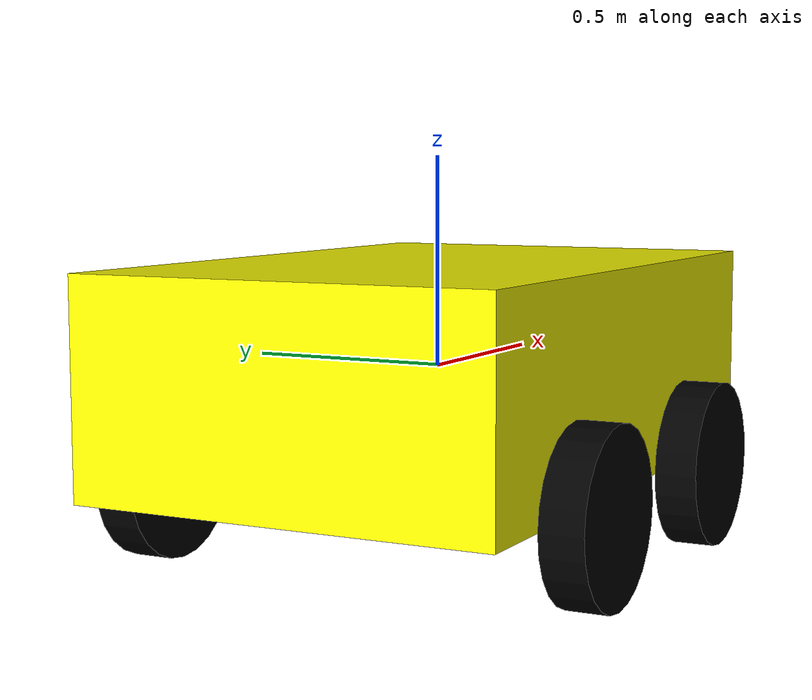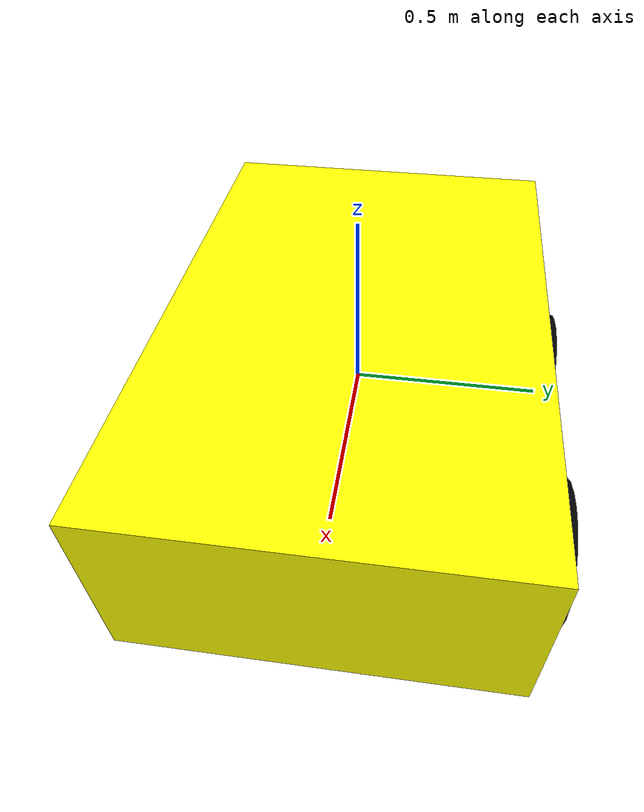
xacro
<?xml version="1.0"?>
<robot xmlns:xacro="http://www.ros.org/wiki/xacro" name="car">
    <xacro:property name="base_link_length" value="1.5"/>
    <xacro:property name="base_link_width" value="1"/>
    <xacro:property name="base_link_high" value="0.5"/>
    <xacro:property name="base_link_m" value="0.5"/>
    <xacro:property name="pi" value="3.1415926"/>

    <xacro:macro name="Box_inertial_matrix" params="m l w h">
        <inertial>
            <mass value="${m}"/>
            <inertia ixx="${m*(h*h + l*l)/12}" ixy="0" ixz="0"
                     iyy="${m*(w*w + l*l)/12}" iyz="0"
                     izz="${m*(w*w + h*h)/12}"/>
        </inertial>
    </xacro:macro>
    <xacro:macro name="cylinder_inertial_matrix" params="m r h">
        <inertial>
            <mass value="${m}"/>
            <inertia ixx="${m*(3*r*r+h*h)/12}" ixy="0" ixz="0"
                     iyy="${m*(3*r*r+h*h)/12}" iyz="0"
                     izz="${m*r*r/2}"/>
        </inertial>
    </xacro:macro>
    <!-- 底盘-->
    <link name="base_link">
        <visual>
            <geometry>
                <box size="${base_link_length} ${base_link_width} ${base_link_high}"/>
            </geometry>
            <origin xyz="0 0 0" rpy="0 0 0"/>
            <material name="orange">
                <color rgba="1.0 1.0 0 1.0"/>
            </material>
        </visual>
        <collision>
            <geometry>
                <box size="${base_link_length} ${base_link_width} ${base_link_high}"/>
            </geometry>
            <origin xyz="0 0 0" rpy="0 0 0"/>
        </collision>
        <xacro:Box_inertial_matrix m="${base_link_m}" l="${base_link_length}" w="${base_link_width}"
                                   h="${base_link_high}"/>
    </link>
    <gazebo reference="base_link">
        <material>Gazebo/Orange</material>
    </gazebo>
    <!-- 四个轮子   -->
    <xacro:property name="wheel_radius" value="0.2"/>
    <xacro:property name="wheel_width" value="0.1"/>
    <xacro:property name="off_set" value="0.35"/>
    <xacro:property name="wheel_m" value="0.05"/>

    <xacro:macro name="front_wheel" params="name flag">
        <link name="${name}_front_wheel">
            <visual>
                <geometry>
                    <cylinder radius="${wheel_radius}" length="${wheel_width}"/>
                </geometry>
                <origin xyz="0 0 0" rpy="${pi/2} 0 0"/>
                <material name="black">
                    <color rgba="0.0 0.0 0.0 1.0"/>
                </material>
            </visual>
            <collision>
                <geometry>
                    <cylinder radius="${wheel_radius}" length="${wheel_width}"/>
                </geometry>
                <origin xyz="0 0 0" rpy="${pi/2} 0 0"/>
            </collision>
            <xacro:cylinder_inertial_matrix m="${wheel_m}" r="${wheel_radius}" h="${wheel_width}"/>
        </link>
        <joint name="${name}_front_wheel2base_link" type="continuous">
            <parent link="base_link"/>
            <child link="${name}_front_wheel"/>
            <origin xyz="${off_set}  ${flag*(base_link_width+wheel_width)/2} ${-(base_link_high/2)}"/>
            <axis xyz="0 1 0"/>
        </joint>
        <gazebo reference="${name}_front_wheel">
            <material>Gazebo/Black</material>
        </gazebo>
    </xacro:macro>
    <xacro:front_wheel name="left" flag="1"/>
    <xacro:front_wheel name="right" flag="-1"/>
    <xacro:macro name="behind_wheel" params="name flag">
        <link name="${name}_behind_wheel">
            <visual>
                <geometry>
                    <cylinder radius="${wheel_radius}" length="${wheel_width}"/>
                </geometry>
                <origin xyz="0 0 0" rpy="${pi/2} 0 0"/>
                <material name="black">
                    <color rgba="0.0 0.0 0.0 1.0"/>
                </material>
            </visual>
            <collision>
                <geometry>
                    <cylinder radius="${wheel_radius}" length="${wheel_width}"/>
                </geometry>
                <origin xyz="0 0 0" rpy="${pi/2} 0 0"/>
            </collision>
            <xacro:cylinder_inertial_matrix m="${wheel_m}" r="${wheel_radius}" h="${wheel_width}"/>
        </link>
        <joint name="${name}_behind_wheel2base_link" type="continuous">
            <parent link="base_link"/>
            <child link="${name}_behind_wheel"/>
            <origin xyz="${-off_set}  ${flag*(base_link_width+wheel_width)/2} ${-(base_link_high/2)}"/>
            <axis xyz="0 1 0"/>
        </joint>
        <gazebo reference="${name}_behind_wheel">
            <material>Gazebo/Black</material>
        </gazebo>
    </xacro:macro>
    <xacro:behind_wheel name="left" flag="1"/>
    <xacro:behind_wheel name="right" flag="-1"/>
    <xacro:macro name="transmission_interface" params="name">
        <transmission name="${name}_transmission">
            <type>transmission_interface/SimpleTransmission</type>
            <joint name="${name}">
                <hardwareInterface>hardware_interface/VelocityJointInterface</hardwareInterface>
            </joint>
            <actuator name="${name}_motor">
                <hardwareInterface>hardware_interface/VelocityJointInterface</hardwareInterface>
                <mechanicalReduction>1</mechanicalReduction>
            </actuator>
        </transmission>
    </xacro:macro>

    <xacro:transmission_interface name="left_front_wheel2base_link"/>
    <xacro:transmission_interface name="right_front_wheel2base_link"/>
    <xacro:transmission_interface name="left_behind_wheel2base_link"/>
    <xacro:transmission_interface name="right_behind_wheel2base_link"/>
    <gazebo>
        <plugin name="gazebo_ros_control" filename="libgazebo_ros_control.so">
            <robotNamespace>/</robotNamespace>
        </plugin>
    </gazebo>
</robot>
